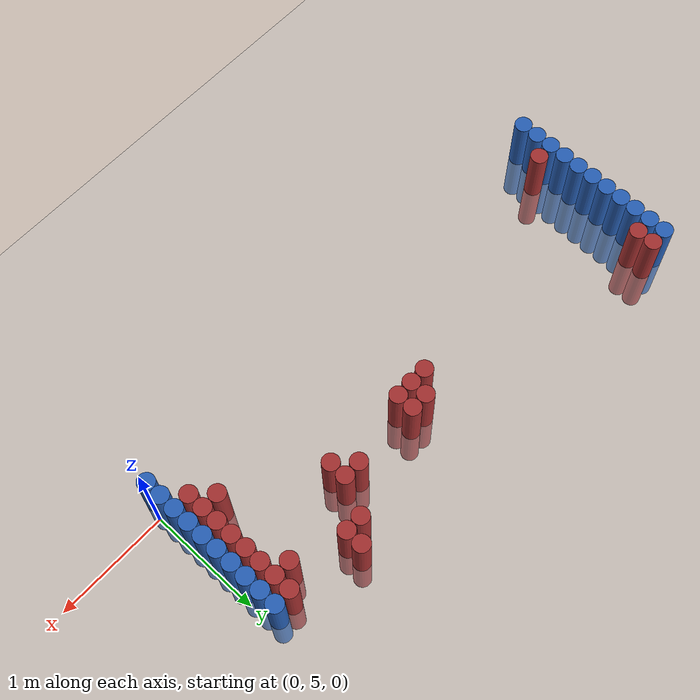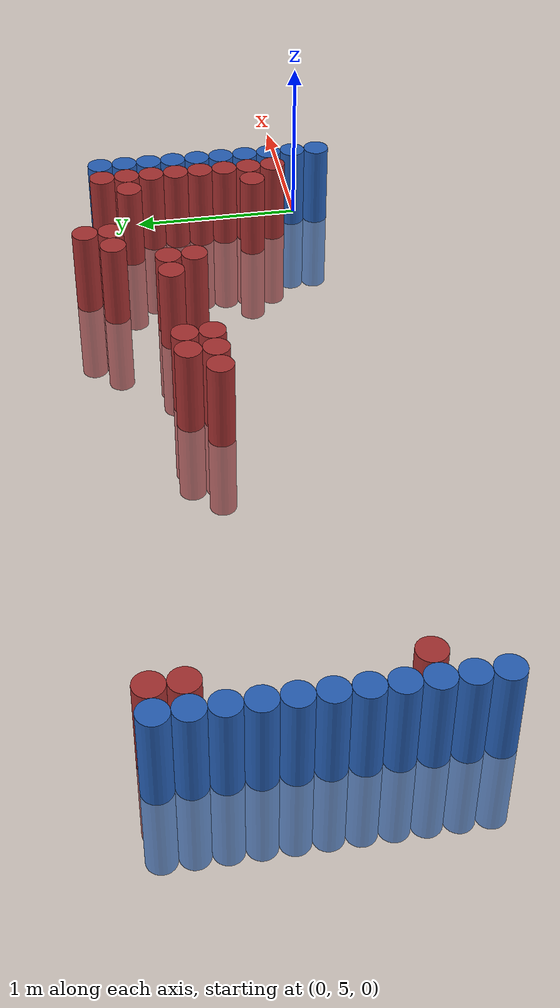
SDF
<sdf version="1.6">
 <world name="default">
  <model name="ground_plane">
   <static>1</static>
   <link name="link">
    <collision name="collision">
     <geometry><plane><normal>0 0 1</normal><size>100 100</size></plane></geometry>
     <surface><friction><ode><mu>100</mu><mu2>50</mu2></ode></friction></surface>
    </collision>
    <visual name="visual">
     <cast_shadows>0</cast_shadows>
     <geometry><plane><normal>0 0 1</normal><size>100 100</size></plane></geometry>
     <material>
      <script><uri>file://media/materials/scripts/gazebo.material</uri><name>Gazebo/Grey</name></script>
     </material>
    </visual>
   </link>
  </model>
  <model name="unit_cylinder_92">
   <static>1</static>
   <pose>-0.075000 4.875000 0.000000 0.000000 0.000000 0.000000</pose>
   <link name="link">
    <inertial>
     <mass>1</mass>
     <inertia><ixx>0.145833</ixx><ixy>0</ixy><ixz>0</ixz><iyy>0.145833</iyy><iyz>0</iyz><izz>0.125</izz></inertia>
    </inertial>
    <collision name="collision">
     <geometry><cylinder><radius>0.075000</radius><length>1</length></cylinder></geometry>
    </collision>
    <visual name="visual">
     <geometry><cylinder><radius>0.075000</radius><length>1</length></cylinder></geometry>
     <material>
      <ambient>0.152000 0.379000 0.720000 1</ambient>
      <diffuse>0.152000 0.379000 0.720000 1</diffuse>
     </material>
     <material>
      <script><name>Gazebo/Grey</name><uri>file://media/materials/scripts/gazebo.material</uri></script>
     </material>
    </visual>
   </link>
  </model>
  <model name="unit_cylinder_93">
   <static>1</static>
   <pose>-4.425000 4.875000 0.000000 0.000000 0.000000 0.000000</pose>
   <link name="link">
    <inertial>
     <mass>1</mass>
     <inertia><ixx>0.145833</ixx><ixy>0</ixy><ixz>0</ixz><iyy>0.145833</iyy><iyz>0</iyz><izz>0.125</izz></inertia>
    </inertial>
    <collision name="collision">
     <geometry><cylinder><radius>0.075000</radius><length>1</length></cylinder></geometry>
    </collision>
    <visual name="visual">
     <geometry><cylinder><radius>0.075000</radius><length>1</length></cylinder></geometry>
     <material>
      <ambient>0.152000 0.379000 0.720000 1</ambient>
      <diffuse>0.152000 0.379000 0.720000 1</diffuse>
     </material>
     <material>
      <script><name>Gazebo/Grey</name><uri>file://media/materials/scripts/gazebo.material</uri></script>
     </material>
    </visual>
   </link>
  </model>
  <model name="unit_cylinder_94">
   <static>1</static>
   <pose>-0.075000 5.025000 0.000000 0.000000 0.000000 0.000000</pose>
   <link name="link">
    <inertial>
     <mass>1</mass>
     <inertia><ixx>0.145833</ixx><ixy>0</ixy><ixz>0</ixz><iyy>0.145833</iyy><iyz>0</iyz><izz>0.125</izz></inertia>
    </inertial>
    <collision name="collision">
     <geometry><cylinder><radius>0.075000</radius><length>1</length></cylinder></geometry>
    </collision>
    <visual name="visual">
     <geometry><cylinder><radius>0.075000</radius><length>1</length></cylinder></geometry>
     <material>
      <ambient>0.152000 0.379000 0.720000 1</ambient>
      <diffuse>0.152000 0.379000 0.720000 1</diffuse>
     </material>
     <material>
      <script><name>Gazebo/Grey</name><uri>file://media/materials/scripts/gazebo.material</uri></script>
     </material>
    </visual>
   </link>
  </model>
  <model name="unit_cylinder_95">
   <static>1</static>
   <pose>-4.425000 5.025000 0.000000 0.000000 0.000000 0.000000</pose>
   <link name="link">
    <inertial>
     <mass>1</mass>
     <inertia><ixx>0.145833</ixx><ixy>0</ixy><ixz>0</ixz><iyy>0.145833</iyy><iyz>0</iyz><izz>0.125</izz></inertia>
    </inertial>
    <collision name="collision">
     <geometry><cylinder><radius>0.075000</radius><length>1</length></cylinder></geometry>
    </collision>
    <visual name="visual">
     <geometry><cylinder><radius>0.075000</radius><length>1</length></cylinder></geometry>
     <material>
      <ambient>0.152000 0.379000 0.720000 1</ambient>
      <diffuse>0.152000 0.379000 0.720000 1</diffuse>
     </material>
     <material>
      <script><name>Gazebo/Grey</name><uri>file://media/materials/scripts/gazebo.material</uri></script>
     </material>
    </visual>
   </link>
  </model>
  <model name="unit_cylinder_96">
   <static>1</static>
   <pose>-4.425000 5.175000 0.000000 0.000000 0.000000 0.000000</pose>
   <link name="link">
    <inertial>
     <mass>1</mass>
     <inertia><ixx>0.145833</ixx><ixy>0</ixy><ixz>0</ixz><iyy>0.145833</iyy><iyz>0</iyz><izz>0.125</izz></inertia>
    </inertial>
    <collision name="collision">
     <geometry><cylinder><radius>0.075000</radius><length>1</length></cylinder></geometry>
    </collision>
    <visual name="visual">
     <geometry><cylinder><radius>0.075000</radius><length>1</length></cylinder></geometry>
     <material>
      <ambient>0.152000 0.379000 0.720000 1</ambient>
      <diffuse>0.152000 0.379000 0.720000 1</diffuse>
     </material>
     <material>
      <script><name>Gazebo/Grey</name><uri>file://media/materials/scripts/gazebo.material</uri></script>
     </material>
    </visual>
   </link>
  </model>
  <model name="unit_cylinder_97">
   <static>1</static>
   <pose>-4.425000 5.325000 0.000000 0.000000 0.000000 0.000000</pose>
   <link name="link">
    <inertial>
     <mass>1</mass>
     <inertia><ixx>0.145833</ixx><ixy>0</ixy><ixz>0</ixz><iyy>0.145833</iyy><iyz>0</iyz><izz>0.125</izz></inertia>
    </inertial>
    <collision name="collision">
     <geometry><cylinder><radius>0.075000</radius><length>1</length></cylinder></geometry>
    </collision>
    <visual name="visual">
     <geometry><cylinder><radius>0.075000</radius><length>1</length></cylinder></geometry>
     <material>
      <ambient>0.152000 0.379000 0.720000 1</ambient>
      <diffuse>0.152000 0.379000 0.720000 1</diffuse>
     </material>
     <material>
      <script><name>Gazebo/Grey</name><uri>file://media/materials/scripts/gazebo.material</uri></script>
     </material>
    </visual>
   </link>
  </model>
  <model name="unit_cylinder_98">
   <static>1</static>
   <pose>-4.425000 5.475000 0.000000 0.000000 0.000000 0.000000</pose>
   <link name="link">
    <inertial>
     <mass>1</mass>
     <inertia><ixx>0.145833</ixx><ixy>0</ixy><ixz>0</ixz><iyy>0.145833</iyy><iyz>0</iyz><izz>0.125</izz></inertia>
    </inertial>
    <collision name="collision">
     <geometry><cylinder><radius>0.075000</radius><length>1</length></cylinder></geometry>
    </collision>
    <visual name="visual">
     <geometry><cylinder><radius>0.075000</radius><length>1</length></cylinder></geometry>
     <material>
      <ambient>0.152000 0.379000 0.720000 1</ambient>
      <diffuse>0.152000 0.379000 0.720000 1</diffuse>
     </material>
     <material>
      <script><name>Gazebo/Grey</name><uri>file://media/materials/scripts/gazebo.material</uri></script>
     </material>
    </visual>
   </link>
  </model>
  <model name="unit_cylinder_99">
   <static>1</static>
   <pose>-4.425000 5.625000 0.000000 0.000000 0.000000 0.000000</pose>
   <link name="link">
    <inertial>
     <mass>1</mass>
     <inertia><ixx>0.145833</ixx><ixy>0</ixy><ixz>0</ixz><iyy>0.145833</iyy><iyz>0</iyz><izz>0.125</izz></inertia>
    </inertial>
    <collision name="collision">
     <geometry><cylinder><radius>0.075000</radius><length>1</length></cylinder></geometry>
    </collision>
    <visual name="visual">
     <geometry><cylinder><radius>0.075000</radius><length>1</length></cylinder></geometry>
     <material>
      <ambient>0.152000 0.379000 0.720000 1</ambient>
      <diffuse>0.152000 0.379000 0.720000 1</diffuse>
     </material>
     <material>
      <script><name>Gazebo/Grey</name><uri>file://media/materials/scripts/gazebo.material</uri></script>
     </material>
    </visual>
   </link>
  </model>
  <model name="unit_cylinder_100">
   <static>1</static>
   <pose>-4.425000 5.775000 0.000000 0.000000 0.000000 0.000000</pose>
   <link name="link">
    <inertial>
     <mass>1</mass>
     <inertia><ixx>0.145833</ixx><ixy>0</ixy><ixz>0</ixz><iyy>0.145833</iyy><iyz>0</iyz><izz>0.125</izz></inertia>
    </inertial>
    <collision name="collision">
     <geometry><cylinder><radius>0.075000</radius><length>1</length></cylinder></geometry>
    </collision>
    <visual name="visual">
     <geometry><cylinder><radius>0.075000</radius><length>1</length></cylinder></geometry>
     <material>
      <ambient>0.152000 0.379000 0.720000 1</ambient>
      <diffuse>0.152000 0.379000 0.720000 1</diffuse>
     </material>
     <material>
      <script><name>Gazebo/Grey</name><uri>file://media/materials/scripts/gazebo.material</uri></script>
     </material>
    </visual>
   </link>
  </model>
  <model name="unit_cylinder_101">
   <static>1</static>
   <pose>-4.425000 5.925000 0.000000 0.000000 0.000000 0.000000</pose>
   <link name="link">
    <inertial>
     <mass>1</mass>
     <inertia><ixx>0.145833</ixx><ixy>0</ixy><ixz>0</ixz><iyy>0.145833</iyy><iyz>0</iyz><izz>0.125</izz></inertia>
    </inertial>
    <collision name="collision">
     <geometry><cylinder><radius>0.075000</radius><length>1</length></cylinder></geometry>
    </collision>
    <visual name="visual">
     <geometry><cylinder><radius>0.075000</radius><length>1</length></cylinder></geometry>
     <material>
      <ambient>0.152000 0.379000 0.720000 1</ambient>
      <diffuse>0.152000 0.379000 0.720000 1</diffuse>
     </material>
     <material>
      <script><name>Gazebo/Grey</name><uri>file://media/materials/scripts/gazebo.material</uri></script>
     </material>
    </visual>
   </link>
  </model>
  <model name="unit_cylinder_102">
   <static>1</static>
   <pose>-4.425000 6.075000 0.000000 0.000000 0.000000 0.000000</pose>
   <link name="link">
    <inertial>
     <mass>1</mass>
     <inertia><ixx>0.145833</ixx><ixy>0</ixy><ixz>0</ixz><iyy>0.145833</iyy><iyz>0</iyz><izz>0.125</izz></inertia>
    </inertial>
    <collision name="collision">
     <geometry><cylinder><radius>0.075000</radius><length>1</length></cylinder></geometry>
    </collision>
    <visual name="visual">
     <geometry><cylinder><radius>0.075000</radius><length>1</length></cylinder></geometry>
     <material>
      <ambient>0.152000 0.379000 0.720000 1</ambient>
      <diffuse>0.152000 0.379000 0.720000 1</diffuse>
     </material>
     <material>
      <script><name>Gazebo/Grey</name><uri>file://media/materials/scripts/gazebo.material</uri></script>
     </material>
    </visual>
   </link>
  </model>
  <model name="unit_cylinder_103">
   <static>1</static>
   <pose>-4.425000 6.225000 0.000000 0.000000 0.000000 0.000000</pose>
   <link name="link">
    <inertial>
     <mass>1</mass>
     <inertia><ixx>0.145833</ixx><ixy>0</ixy><ixz>0</ixz><iyy>0.145833</iyy><iyz>0</iyz><izz>0.125</izz></inertia>
    </inertial>
    <collision name="collision">
     <geometry><cylinder><radius>0.075000</radius><length>1</length></cylinder></geometry>
    </collision>
    <visual name="visual">
     <geometry><cylinder><radius>0.075000</radius><length>1</length></cylinder></geometry>
     <material>
      <ambient>0.152000 0.379000 0.720000 1</ambient>
      <diffuse>0.152000 0.379000 0.720000 1</diffuse>
     </material>
     <material>
      <script><name>Gazebo/Grey</name><uri>file://media/materials/scripts/gazebo.material</uri></script>
     </material>
    </visual>
   </link>
  </model>
  <model name="unit_cylinder_104">
   <static>1</static>
   <pose>-4.425000 6.375000 0.000000 0.000000 0.000000 0.000000</pose>
   <link name="link">
    <inertial>
     <mass>1</mass>
     <inertia><ixx>0.145833</ixx><ixy>0</ixy><ixz>0</ixz><iyy>0.145833</iyy><iyz>0</iyz><izz>0.125</izz></inertia>
    </inertial>
    <collision name="collision">
     <geometry><cylinder><radius>0.075000</radius><length>1</length></cylinder></geometry>
    </collision>
    <visual name="visual">
     <geometry><cylinder><radius>0.075000</radius><length>1</length></cylinder></geometry>
     <material>
      <ambient>0.152000 0.379000 0.720000 1</ambient>
      <diffuse>0.152000 0.379000 0.720000 1</diffuse>
     </material>
     <material>
      <script><name>Gazebo/Grey</name><uri>file://media/materials/scripts/gazebo.material</uri></script>
     </material>
    </visual>
   </link>
  </model>
  <model name="unit_cylinder_126">
   <static>1</static>
   <pose>-4.275000 5.175000 0.000000 0.000000 0.000000 0.000000</pose>
   <link name="link">
    <inertial>
     <mass>1</mass>
     <inertia><ixx>0.145833</ixx><ixy>0</ixy><ixz>0</ixz><iyy>0.145833</iyy><iyz>0</iyz><izz>0.125</izz></inertia>
    </inertial>
    <collision name="collision">
     <geometry><cylinder><radius>0.075000</radius><length>1</length></cylinder></geometry>
    </collision>
    <visual name="visual">
     <geometry><cylinder><radius>0.075000</radius><length>1</length></cylinder></geometry>
     <material>
      <ambient>0.648000 0.192000 0.192000 1</ambient>
      <diffuse>0.648000 0.192000 0.192000 1</diffuse>
     </material>
     <material>
      <script><name>Gazebo/Grey</name><uri>file://media/materials/scripts/gazebo.material</uri></script>
     </material>
    </visual>
   </link>
  </model>
  <model name="unit_cylinder_127">
   <static>1</static>
   <pose>-4.275000 6.225000 0.000000 0.000000 0.000000 0.000000</pose>
   <link name="link">
    <inertial>
     <mass>1</mass>
     <inertia><ixx>0.145833</ixx><ixy>0</ixy><ixz>0</ixz><iyy>0.145833</iyy><iyz>0</iyz><izz>0.125</izz></inertia>
    </inertial>
    <collision name="collision">
     <geometry><cylinder><radius>0.075000</radius><length>1</length></cylinder></geometry>
    </collision>
    <visual name="visual">
     <geometry><cylinder><radius>0.075000</radius><length>1</length></cylinder></geometry>
     <material>
      <ambient>0.648000 0.192000 0.192000 1</ambient>
      <diffuse>0.648000 0.192000 0.192000 1</diffuse>
     </material>
     <material>
      <script><name>Gazebo/Grey</name><uri>file://media/materials/scripts/gazebo.material</uri></script>
     </material>
    </visual>
   </link>
  </model>
  <model name="unit_cylinder_128">
   <static>1</static>
   <pose>-4.275000 6.375000 0.000000 0.000000 0.000000 0.000000</pose>
   <link name="link">
    <inertial>
     <mass>1</mass>
     <inertia><ixx>0.145833</ixx><ixy>0</ixy><ixz>0</ixz><iyy>0.145833</iyy><iyz>0</iyz><izz>0.125</izz></inertia>
    </inertial>
    <collision name="collision">
     <geometry><cylinder><radius>0.075000</radius><length>1</length></cylinder></geometry>
    </collision>
    <visual name="visual">
     <geometry><cylinder><radius>0.075000</radius><length>1</length></cylinder></geometry>
     <material>
      <ambient>0.648000 0.192000 0.192000 1</ambient>
      <diffuse>0.648000 0.192000 0.192000 1</diffuse>
     </material>
     <material>
      <script><name>Gazebo/Grey</name><uri>file://media/materials/scripts/gazebo.material</uri></script>
     </material>
    </visual>
   </link>
  </model>
  <model name="unit_cylinder_193">
   <static>1</static>
   <pose>-2.175000 5.775000 0.000000 0.000000 0.000000 0.000000</pose>
   <link name="link">
    <inertial>
     <mass>1</mass>
     <inertia><ixx>0.145833</ixx><ixy>0</ixy><ixz>0</ixz><iyy>0.145833</iyy><iyz>0</iyz><izz>0.125</izz></inertia>
    </inertial>
    <collision name="collision">
     <geometry><cylinder><radius>0.075000</radius><length>1</length></cylinder></geometry>
    </collision>
    <visual name="visual">
     <geometry><cylinder><radius>0.075000</radius><length>1</length></cylinder></geometry>
     <material>
      <ambient>0.648000 0.192000 0.192000 1</ambient>
      <diffuse>0.648000 0.192000 0.192000 1</diffuse>
     </material>
     <material>
      <script><name>Gazebo/Grey</name><uri>file://media/materials/scripts/gazebo.material</uri></script>
     </material>
    </visual>
   </link>
  </model>
  <model name="unit_cylinder_199">
   <static>1</static>
   <pose>-2.025000 5.775000 0.000000 0.000000 0.000000 0.000000</pose>
   <link name="link">
    <inertial>
     <mass>1</mass>
     <inertia><ixx>0.145833</ixx><ixy>0</ixy><ixz>0</ixz><iyy>0.145833</iyy><iyz>0</iyz><izz>0.125</izz></inertia>
    </inertial>
    <collision name="collision">
     <geometry><cylinder><radius>0.075000</radius><length>1</length></cylinder></geometry>
    </collision>
    <visual name="visual">
     <geometry><cylinder><radius>0.075000</radius><length>1</length></cylinder></geometry>
     <material>
      <ambient>0.648000 0.192000 0.192000 1</ambient>
      <diffuse>0.648000 0.192000 0.192000 1</diffuse>
     </material>
     <material>
      <script><name>Gazebo/Grey</name><uri>file://media/materials/scripts/gazebo.material</uri></script>
     </material>
    </visual>
   </link>
  </model>
  <model name="unit_cylinder_200">
   <static>1</static>
   <pose>-2.025000 5.925000 0.000000 0.000000 0.000000 0.000000</pose>
   <link name="link">
    <inertial>
     <mass>1</mass>
     <inertia><ixx>0.145833</ixx><ixy>0</ixy><ixz>0</ixz><iyy>0.145833</iyy><iyz>0</iyz><izz>0.125</izz></inertia>
    </inertial>
    <collision name="collision">
     <geometry><cylinder><radius>0.075000</radius><length>1</length></cylinder></geometry>
    </collision>
    <visual name="visual">
     <geometry><cylinder><radius>0.075000</radius><length>1</length></cylinder></geometry>
     <material>
      <ambient>0.648000 0.192000 0.192000 1</ambient>
      <diffuse>0.648000 0.192000 0.192000 1</diffuse>
     </material>
     <material>
      <script><name>Gazebo/Grey</name><uri>file://media/materials/scripts/gazebo.material</uri></script>
     </material>
    </visual>
   </link>
  </model>
  <model name="unit_cylinder_203">
   <static>1</static>
   <pose>-1.875000 5.775000 0.000000 0.000000 0.000000 0.000000</pose>
   <link name="link">
    <inertial>
     <mass>1</mass>
     <inertia><ixx>0.145833</ixx><ixy>0</ixy><ixz>0</ixz><iyy>0.145833</iyy><iyz>0</iyz><izz>0.125</izz></inertia>
    </inertial>
    <collision name="collision">
     <geometry><cylinder><radius>0.075000</radius><length>1</length></cylinder></geometry>
    </collision>
    <visual name="visual">
     <geometry><cylinder><radius>0.075000</radius><length>1</length></cylinder></geometry>
     <material>
      <ambient>0.648000 0.192000 0.192000 1</ambient>
      <diffuse>0.648000 0.192000 0.192000 1</diffuse>
     </material>
     <material>
      <script><name>Gazebo/Grey</name><uri>file://media/materials/scripts/gazebo.material</uri></script>
     </material>
    </visual>
   </link>
  </model>
  <model name="unit_cylinder_204">
   <static>1</static>
   <pose>-1.875000 5.925000 0.000000 0.000000 0.000000 0.000000</pose>
   <link name="link">
    <inertial>
     <mass>1</mass>
     <inertia><ixx>0.145833</ixx><ixy>0</ixy><ixz>0</ixz><iyy>0.145833</iyy><iyz>0</iyz><izz>0.125</izz></inertia>
    </inertial>
    <collision name="collision">
     <geometry><cylinder><radius>0.075000</radius><length>1</length></cylinder></geometry>
    </collision>
    <visual name="visual">
     <geometry><cylinder><radius>0.075000</radius><length>1</length></cylinder></geometry>
     <material>
      <ambient>0.648000 0.192000 0.192000 1</ambient>
      <diffuse>0.648000 0.192000 0.192000 1</diffuse>
     </material>
     <material>
      <script><name>Gazebo/Grey</name><uri>file://media/materials/scripts/gazebo.material</uri></script>
     </material>
    </visual>
   </link>
  </model>
  <model name="unit_cylinder_210">
   <static>1</static>
   <pose>-1.275000 5.925000 0.000000 0.000000 0.000000 0.000000</pose>
   <link name="link">
    <inertial>
     <mass>1</mass>
     <inertia><ixx>0.145833</ixx><ixy>0</ixy><ixz>0</ixz><iyy>0.145833</iyy><iyz>0</iyz><izz>0.125</izz></inertia>
    </inertial>
    <collision name="collision">
     <geometry><cylinder><radius>0.075000</radius><length>1</length></cylinder></geometry>
    </collision>
    <visual name="visual">
     <geometry><cylinder><radius>0.075000</radius><length>1</length></cylinder></geometry>
     <material>
      <ambient>0.648000 0.192000 0.192000 1</ambient>
      <diffuse>0.648000 0.192000 0.192000 1</diffuse>
     </material>
     <material>
      <script><name>Gazebo/Grey</name><uri>file://media/materials/scripts/gazebo.material</uri></script>
     </material>
    </visual>
   </link>
  </model>
  <model name="unit_cylinder_211">
   <static>1</static>
   <pose>-1.125000 5.775000 0.000000 0.000000 0.000000 0.000000</pose>
   <link name="link">
    <inertial>
     <mass>1</mass>
     <inertia><ixx>0.145833</ixx><ixy>0</ixy><ixz>0</ixz><iyy>0.145833</iyy><iyz>0</iyz><izz>0.125</izz></inertia>
    </inertial>
    <collision name="collision">
     <geometry><cylinder><radius>0.075000</radius><length>1</length></cylinder></geometry>
    </collision>
    <visual name="visual">
     <geometry><cylinder><radius>0.075000</radius><length>1</length></cylinder></geometry>
     <material>
      <ambient>0.648000 0.192000 0.192000 1</ambient>
      <diffuse>0.648000 0.192000 0.192000 1</diffuse>
     </material>
     <material>
      <script><name>Gazebo/Grey</name><uri>file://media/materials/scripts/gazebo.material</uri></script>
     </material>
    </visual>
   </link>
  </model>
  <model name="unit_cylinder_212">
   <static>1</static>
   <pose>-1.125000 5.925000 0.000000 0.000000 0.000000 0.000000</pose>
   <link name="link">
    <inertial>
     <mass>1</mass>
     <inertia><ixx>0.145833</ixx><ixy>0</ixy><ixz>0</ixz><iyy>0.145833</iyy><iyz>0</iyz><izz>0.125</izz></inertia>
    </inertial>
    <collision name="collision">
     <geometry><cylinder><radius>0.075000</radius><length>1</length></cylinder></geometry>
    </collision>
    <visual name="visual">
     <geometry><cylinder><radius>0.075000</radius><length>1</length></cylinder></geometry>
     <material>
      <ambient>0.648000 0.192000 0.192000 1</ambient>
      <diffuse>0.648000 0.192000 0.192000 1</diffuse>
     </material>
     <material>
      <script><name>Gazebo/Grey</name><uri>file://media/materials/scripts/gazebo.material</uri></script>
     </material>
    </visual>
   </link>
  </model>
  <model name="unit_cylinder_213">
   <static>1</static>
   <pose>-0.975000 6.225000 0.000000 0.000000 0.000000 0.000000</pose>
   <link name="link">
    <inertial>
     <mass>1</mass>
     <inertia><ixx>0.145833</ixx><ixy>0</ixy><ixz>0</ixz><iyy>0.145833</iyy><iyz>0</iyz><izz>0.125</izz></inertia>
    </inertial>
    <collision name="collision">
     <geometry><cylinder><radius>0.075000</radius><length>1</length></cylinder></geometry>
    </collision>
    <visual name="visual">
     <geometry><cylinder><radius>0.075000</radius><length>1</length></cylinder></geometry>
     <material>
      <ambient>0.648000 0.192000 0.192000 1</ambient>
      <diffuse>0.648000 0.192000 0.192000 1</diffuse>
     </material>
     <material>
      <script><name>Gazebo/Grey</name><uri>file://media/materials/scripts/gazebo.material</uri></script>
     </material>
    </visual>
   </link>
  </model>
  <model name="unit_cylinder_214">
   <static>1</static>
   <pose>-0.825000 6.225000 0.000000 0.000000 0.000000 0.000000</pose>
   <link name="link">
    <inertial>
     <mass>1</mass>
     <inertia><ixx>0.145833</ixx><ixy>0</ixy><ixz>0</ixz><iyy>0.145833</iyy><iyz>0</iyz><izz>0.125</izz></inertia>
    </inertial>
    <collision name="collision">
     <geometry><cylinder><radius>0.075000</radius><length>1</length></cylinder></geometry>
    </collision>
    <visual name="visual">
     <geometry><cylinder><radius>0.075000</radius><length>1</length></cylinder></geometry>
     <material>
      <ambient>0.648000 0.192000 0.192000 1</ambient>
      <diffuse>0.648000 0.192000 0.192000 1</diffuse>
     </material>
     <material>
      <script><name>Gazebo/Grey</name><uri>file://media/materials/scripts/gazebo.material</uri></script>
     </material>
    </visual>
   </link>
  </model>
  <model name="unit_cylinder_215">
   <static>1</static>
   <pose>-0.825000 6.375000 0.000000 0.000000 0.000000 0.000000</pose>
   <link name="link">
    <inertial>
     <mass>1</mass>
     <inertia><ixx>0.145833</ixx><ixy>0</ixy><ixz>0</ixz><iyy>0.145833</iyy><iyz>0</iyz><izz>0.125</izz></inertia>
    </inertial>
    <collision name="collision">
     <geometry><cylinder><radius>0.075000</radius><length>1</length></cylinder></geometry>
    </collision>
    <visual name="visual">
     <geometry><cylinder><radius>0.075000</radius><length>1</length></cylinder></geometry>
     <material>
      <ambient>0.648000 0.192000 0.192000 1</ambient>
      <diffuse>0.648000 0.192000 0.192000 1</diffuse>
     </material>
     <material>
      <script><name>Gazebo/Grey</name><uri>file://media/materials/scripts/gazebo.material</uri></script>
     </material>
    </visual>
   </link>
  </model>
  <model name="unit_cylinder_222">
   <static>1</static>
   <pose>-0.375000 5.325000 0.000000 0.000000 0.000000 0.000000</pose>
   <link name="link">
    <inertial>
     <mass>1</mass>
     <inertia><ixx>0.145833</ixx><ixy>0</ixy><ixz>0</ixz><iyy>0.145833</iyy><iyz>0</iyz><izz>0.125</izz></inertia>
    </inertial>
    <collision name="collision">
     <geometry><cylinder><radius>0.075000</radius><length>1</length></cylinder></geometry>
    </collision>
    <visual name="visual">
     <geometry><cylinder><radius>0.075000</radius><length>1</length></cylinder></geometry>
     <material>
      <ambient>0.648000 0.192000 0.192000 1</ambient>
      <diffuse>0.648000 0.192000 0.192000 1</diffuse>
     </material>
     <material>
      <script><name>Gazebo/Grey</name><uri>file://media/materials/scripts/gazebo.material</uri></script>
     </material>
    </visual>
   </link>
  </model>
  <model name="unit_cylinder_223">
   <static>1</static>
   <pose>-0.375000 6.075000 0.000000 0.000000 0.000000 0.000000</pose>
   <link name="link">
    <inertial>
     <mass>1</mass>
     <inertia><ixx>0.145833</ixx><ixy>0</ixy><ixz>0</ixz><iyy>0.145833</iyy><iyz>0</iyz><izz>0.125</izz></inertia>
    </inertial>
    <collision name="collision">
     <geometry><cylinder><radius>0.075000</radius><length>1</length></cylinder></geometry>
    </collision>
    <visual name="visual">
     <geometry><cylinder><radius>0.075000</radius><length>1</length></cylinder></geometry>
     <material>
      <ambient>0.648000 0.192000 0.192000 1</ambient>
      <diffuse>0.648000 0.192000 0.192000 1</diffuse>
     </material>
     <material>
      <script><name>Gazebo/Grey</name><uri>file://media/materials/scripts/gazebo.material</uri></script>
     </material>
    </visual>
   </link>
  </model>
  <model name="unit_cylinder_227">
   <static>1</static>
   <pose>-0.225000 5.175000 0.000000 0.000000 0.000000 0.000000</pose>
   <link name="link">
    <inertial>
     <mass>1</mass>
     <inertia><ixx>0.145833</ixx><ixy>0</ixy><ixz>0</ixz><iyy>0.145833</iyy><iyz>0</iyz><izz>0.125</izz></inertia>
    </inertial>
    <collision name="collision">
     <geometry><cylinder><radius>0.075000</radius><length>1</length></cylinder></geometry>
    </collision>
    <visual name="visual">
     <geometry><cylinder><radius>0.075000</radius><length>1</length></cylinder></geometry>
     <material>
      <ambient>0.648000 0.192000 0.192000 1</ambient>
      <diffuse>0.648000 0.192000 0.192000 1</diffuse>
     </material>
     <material>
      <script><name>Gazebo/Grey</name><uri>file://media/materials/scripts/gazebo.material</uri></script>
     </material>
    </visual>
   </link>
  </model>
  <model name="unit_cylinder_228">
   <static>1</static>
   <pose>-0.225000 5.325000 0.000000 0.000000 0.000000 0.000000</pose>
   <link name="link">
    <inertial>
     <mass>1</mass>
     <inertia><ixx>0.145833</ixx><ixy>0</ixy><ixz>0</ixz><iyy>0.145833</iyy><iyz>0</iyz><izz>0.125</izz></inertia>
    </inertial>
    <collision name="collision">
     <geometry><cylinder><radius>0.075000</radius><length>1</length></cylinder></geometry>
    </collision>
    <visual name="visual">
     <geometry><cylinder><radius>0.075000</radius><length>1</length></cylinder></geometry>
     <material>
      <ambient>0.648000 0.192000 0.192000 1</ambient>
      <diffuse>0.648000 0.192000 0.192000 1</diffuse>
     </material>
     <material>
      <script><name>Gazebo/Grey</name><uri>file://media/materials/scripts/gazebo.material</uri></script>
     </material>
    </visual>
   </link>
  </model>
  <model name="unit_cylinder_229">
   <static>1</static>
   <pose>-0.225000 5.475000 0.000000 0.000000 0.000000 0.000000</pose>
   <link name="link">
    <inertial>
     <mass>1</mass>
     <inertia><ixx>0.145833</ixx><ixy>0</ixy><ixz>0</ixz><iyy>0.145833</iyy><iyz>0</iyz><izz>0.125</izz></inertia>
    </inertial>
    <collision name="collision">
     <geometry><cylinder><radius>0.075000</radius><length>1</length></cylinder></geometry>
    </collision>
    <visual name="visual">
     <geometry><cylinder><radius>0.075000</radius><length>1</length></cylinder></geometry>
     <material>
      <ambient>0.648000 0.192000 0.192000 1</ambient>
      <diffuse>0.648000 0.192000 0.192000 1</diffuse>
     </material>
     <material>
      <script><name>Gazebo/Grey</name><uri>file://media/materials/scripts/gazebo.material</uri></script>
     </material>
    </visual>
   </link>
  </model>
  <model name="unit_cylinder_230">
   <static>1</static>
   <pose>-0.225000 5.625000 0.000000 0.000000 0.000000 0.000000</pose>
   <link name="link">
    <inertial>
     <mass>1</mass>
     <inertia><ixx>0.145833</ixx><ixy>0</ixy><ixz>0</ixz><iyy>0.145833</iyy><iyz>0</iyz><izz>0.125</izz></inertia>
    </inertial>
    <collision name="collision">
     <geometry><cylinder><radius>0.075000</radius><length>1</length></cylinder></geometry>
    </collision>
    <visual name="visual">
     <geometry><cylinder><radius>0.075000</radius><length>1</length></cylinder></geometry>
     <material>
      <ambient>0.648000 0.192000 0.192000 1</ambient>
      <diffuse>0.648000 0.192000 0.192000 1</diffuse>
     </material>
     <material>
      <script><name>Gazebo/Grey</name><uri>file://media/materials/scripts/gazebo.material</uri></script>
     </material>
    </visual>
   </link>
  </model>
  <model name="unit_cylinder_231">
   <static>1</static>
   <pose>-0.225000 5.775000 0.000000 0.000000 0.000000 0.000000</pose>
   <link name="link">
    <inertial>
     <mass>1</mass>
     <inertia><ixx>0.145833</ixx><ixy>0</ixy><ixz>0</ixz><iyy>0.145833</iyy><iyz>0</iyz><izz>0.125</izz></inertia>
    </inertial>
    <collision name="collision">
     <geometry><cylinder><radius>0.075000</radius><length>1</length></cylinder></geometry>
    </collision>
    <visual name="visual">
     <geometry><cylinder><radius>0.075000</radius><length>1</length></cylinder></geometry>
     <material>
      <ambient>0.648000 0.192000 0.192000 1</ambient>
      <diffuse>0.648000 0.192000 0.192000 1</diffuse>
     </material>
     <material>
      <script><name>Gazebo/Grey</name><uri>file://media/materials/scripts/gazebo.material</uri></script>
     </material>
    </visual>
   </link>
  </model>
  <model name="unit_cylinder_232">
   <static>1</static>
   <pose>-0.225000 5.925000 0.000000 0.000000 0.000000 0.000000</pose>
   <link name="link">
    <inertial>
     <mass>1</mass>
     <inertia><ixx>0.145833</ixx><ixy>0</ixy><ixz>0</ixz><iyy>0.145833</iyy><iyz>0</iyz><izz>0.125</izz></inertia>
    </inertial>
    <collision name="collision">
     <geometry><cylinder><radius>0.075000</radius><length>1</length></cylinder></geometry>
    </collision>
    <visual name="visual">
     <geometry><cylinder><radius>0.075000</radius><length>1</length></cylinder></geometry>
     <material>
      <ambient>0.648000 0.192000 0.192000 1</ambient>
      <diffuse>0.648000 0.192000 0.192000 1</diffuse>
     </material>
     <material>
      <script><name>Gazebo/Grey</name><uri>file://media/materials/scripts/gazebo.material</uri></script>
     </material>
    </visual>
   </link>
  </model>
  <model name="unit_cylinder_233">
   <static>1</static>
   <pose>-0.225000 6.075000 0.000000 0.000000 0.000000 0.000000</pose>
   <link name="link">
    <inertial>
     <mass>1</mass>
     <inertia><ixx>0.145833</ixx><ixy>0</ixy><ixz>0</ixz><iyy>0.145833</iyy><iyz>0</iyz><izz>0.125</izz></inertia>
    </inertial>
    <collision name="collision">
     <geometry><cylinder><radius>0.075000</radius><length>1</length></cylinder></geometry>
    </collision>
    <visual name="visual">
     <geometry><cylinder><radius>0.075000</radius><length>1</length></cylinder></geometry>
     <material>
      <ambient>0.648000 0.192000 0.192000 1</ambient>
      <diffuse>0.648000 0.192000 0.192000 1</diffuse>
     </material>
     <material>
      <script><name>Gazebo/Grey</name><uri>file://media/materials/scripts/gazebo.material</uri></script>
     </material>
    </visual>
   </link>
  </model>
  <model name="unit_cylinder_234">
   <static>1</static>
   <pose>-0.225000 6.225000 0.000000 0.000000 0.000000 0.000000</pose>
   <link name="link">
    <inertial>
     <mass>1</mass>
     <inertia><ixx>0.145833</ixx><ixy>0</ixy><ixz>0</ixz><iyy>0.145833</iyy><iyz>0</iyz><izz>0.125</izz></inertia>
    </inertial>
    <collision name="collision">
     <geometry><cylinder><radius>0.075000</radius><length>1</length></cylinder></geometry>
    </collision>
    <visual name="visual">
     <geometry><cylinder><radius>0.075000</radius><length>1</length></cylinder></geometry>
     <material>
      <ambient>0.648000 0.192000 0.192000 1</ambient>
      <diffuse>0.648000 0.192000 0.192000 1</diffuse>
     </material>
     <material>
      <script><name>Gazebo/Grey</name><uri>file://media/materials/scripts/gazebo.material</uri></script>
     </material>
    </visual>
   </link>
  </model>
  <model name="unit_cylinder_244">
   <static>1</static>
   <pose>-0.075000 5.175000 0.000000 0.000000 0.000000 0.000000</pose>
   <link name="link">
    <inertial>
     <mass>1</mass>
     <inertia><ixx>0.145833</ixx><ixy>0</ixy><ixz>0</ixz><iyy>0.145833</iyy><iyz>0</iyz><izz>0.125</izz></inertia>
    </inertial>
    <collision name="collision">
     <geometry><cylinder><radius>0.075000</radius><length>1</length></cylinder></geometry>
    </collision>
    <visual name="visual">
     <geometry><cylinder><radius>0.075000</radius><length>1</length></cylinder></geometry>
     <material>
      <ambient>0.152000 0.379000 0.720000 1</ambient>
      <diffuse>0.152000 0.379000 0.720000 1</diffuse>
     </material>
     <material>
      <script><name>Gazebo/Grey</name><uri>file://media/materials/scripts/gazebo.material</uri></script>
     </material>
    </visual>
   </link>
  </model>
  <model name="unit_cylinder_245">
   <static>1</static>
   <pose>-0.075000 5.325000 0.000000 0.000000 0.000000 0.000000</pose>
   <link name="link">
    <inertial>
     <mass>1</mass>
     <inertia><ixx>0.145833</ixx><ixy>0</ixy><ixz>0</ixz><iyy>0.145833</iyy><iyz>0</iyz><izz>0.125</izz></inertia>
    </inertial>
    <collision name="collision">
     <geometry><cylinder><radius>0.075000</radius><length>1</length></cylinder></geometry>
    </collision>
    <visual name="visual">
     <geometry><cylinder><radius>0.075000</radius><length>1</length></cylinder></geometry>
     <material>
      <ambient>0.152000 0.379000 0.720000 1</ambient>
      <diffuse>0.152000 0.379000 0.720000 1</diffuse>
     </material>
     <material>
      <script><name>Gazebo/Grey</name><uri>file://media/materials/scripts/gazebo.material</uri></script>
     </material>
    </visual>
   </link>
  </model>
  <model name="unit_cylinder_246">
   <static>1</static>
   <pose>-0.075000 5.475000 0.000000 0.000000 0.000000 0.000000</pose>
   <link name="link">
    <inertial>
     <mass>1</mass>
     <inertia><ixx>0.145833</ixx><ixy>0</ixy><ixz>0</ixz><iyy>0.145833</iyy><iyz>0</iyz><izz>0.125</izz></inertia>
    </inertial>
    <collision name="collision">
     <geometry><cylinder><radius>0.075000</radius><length>1</length></cylinder></geometry>
    </collision>
    <visual name="visual">
     <geometry><cylinder><radius>0.075000</radius><length>1</length></cylinder></geometry>
     <material>
      <ambient>0.152000 0.379000 0.720000 1</ambient>
      <diffuse>0.152000 0.379000 0.720000 1</diffuse>
     </material>
     <material>
      <script><name>Gazebo/Grey</name><uri>file://media/materials/scripts/gazebo.material</uri></script>
     </material>
    </visual>
   </link>
  </model>
  <model name="unit_cylinder_247">
   <static>1</static>
   <pose>-0.075000 5.625000 0.000000 0.000000 0.000000 0.000000</pose>
   <link name="link">
    <inertial>
     <mass>1</mass>
     <inertia><ixx>0.145833</ixx><ixy>0</ixy><ixz>0</ixz><iyy>0.145833</iyy><iyz>0</iyz><izz>0.125</izz></inertia>
    </inertial>
    <collision name="collision">
     <geometry><cylinder><radius>0.075000</radius><length>1</length></cylinder></geometry>
    </collision>
    <visual name="visual">
     <geometry><cylinder><radius>0.075000</radius><length>1</length></cylinder></geometry>
     <material>
      <ambient>0.152000 0.379000 0.720000 1</ambient>
      <diffuse>0.152000 0.379000 0.720000 1</diffuse>
     </material>
     <material>
      <script><name>Gazebo/Grey</name><uri>file://media/materials/scripts/gazebo.material</uri></script>
     </material>
    </visual>
   </link>
  </model>
  <model name="unit_cylinder_248">
   <static>1</static>
   <pose>-0.075000 5.775000 0.000000 0.000000 0.000000 0.000000</pose>
   <link name="link">
    <inertial>
     <mass>1</mass>
     <inertia><ixx>0.145833</ixx><ixy>0</ixy><ixz>0</ixz><iyy>0.145833</iyy><iyz>0</iyz><izz>0.125</izz></inertia>
    </inertial>
    <collision name="collision">
     <geometry><cylinder><radius>0.075000</radius><length>1</length></cylinder></geometry>
    </collision>
    <visual name="visual">
     <geometry><cylinder><radius>0.075000</radius><length>1</length></cylinder></geometry>
     <material>
      <ambient>0.152000 0.379000 0.720000 1</ambient>
      <diffuse>0.152000 0.379000 0.720000 1</diffuse>
     </material>
     <material>
      <script><name>Gazebo/Grey</name><uri>file://media/materials/scripts/gazebo.material</uri></script>
     </material>
    </visual>
   </link>
  </model>
  <model name="unit_cylinder_249">
   <static>1</static>
   <pose>-0.075000 5.925000 0.000000 0.000000 0.000000 0.000000</pose>
   <link name="link">
    <inertial>
     <mass>1</mass>
     <inertia><ixx>0.145833</ixx><ixy>0</ixy><ixz>0</ixz><iyy>0.145833</iyy><iyz>0</iyz><izz>0.125</izz></inertia>
    </inertial>
    <collision name="collision">
     <geometry><cylinder><radius>0.075000</radius><length>1</length></cylinder></geometry>
    </collision>
    <visual name="visual">
     <geometry><cylinder><radius>0.075000</radius><length>1</length></cylinder></geometry>
     <material>
      <ambient>0.152000 0.379000 0.720000 1</ambient>
      <diffuse>0.152000 0.379000 0.720000 1</diffuse>
     </material>
     <material>
      <script><name>Gazebo/Grey</name><uri>file://media/materials/scripts/gazebo.material</uri></script>
     </material>
    </visual>
   </link>
  </model>
  <model name="unit_cylinder_250">
   <static>1</static>
   <pose>-0.075000 6.075000 0.000000 0.000000 0.000000 0.000000</pose>
   <link name="link">
    <inertial>
     <mass>1</mass>
     <inertia><ixx>0.145833</ixx><ixy>0</ixy><ixz>0</ixz><iyy>0.145833</iyy><iyz>0</iyz><izz>0.125</izz></inertia>
    </inertial>
    <collision name="collision">
     <geometry><cylinder><radius>0.075000</radius><length>1</length></cylinder></geometry>
    </collision>
    <visual name="visual">
     <geometry><cylinder><radius>0.075000</radius><length>1</length></cylinder></geometry>
     <material>
      <ambient>0.152000 0.379000 0.720000 1</ambient>
      <diffuse>0.152000 0.379000 0.720000 1</diffuse>
     </material>
     <material>
      <script><name>Gazebo/Grey</name><uri>file://media/materials/scripts/gazebo.material</uri></script>
     </material>
    </visual>
   </link>
  </model>
  <model name="unit_cylinder_251">
   <static>1</static>
   <pose>-0.075000 6.225000 0.000000 0.000000 0.000000 0.000000</pose>
   <link name="link">
    <inertial>
     <mass>1</mass>
     <inertia><ixx>0.145833</ixx><ixy>0</ixy><ixz>0</ixz><iyy>0.145833</iyy><iyz>0</iyz><izz>0.125</izz></inertia>
    </inertial>
    <collision name="collision">
     <geometry><cylinder><radius>0.075000</radius><length>1</length></cylinder></geometry>
    </collision>
    <visual name="visual">
     <geometry><cylinder><radius>0.075000</radius><length>1</length></cylinder></geometry>
     <material>
      <ambient>0.152000 0.379000 0.720000 1</ambient>
      <diffuse>0.152000 0.379000 0.720000 1</diffuse>
     </material>
     <material>
      <script><name>Gazebo/Grey</name><uri>file://media/materials/scripts/gazebo.material</uri></script>
     </material>
    </visual>
   </link>
  </model>
 </world>
</sdf>
